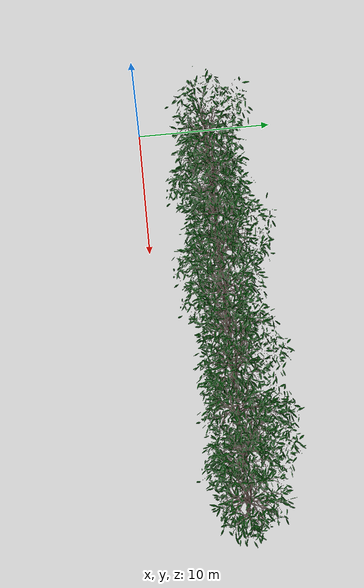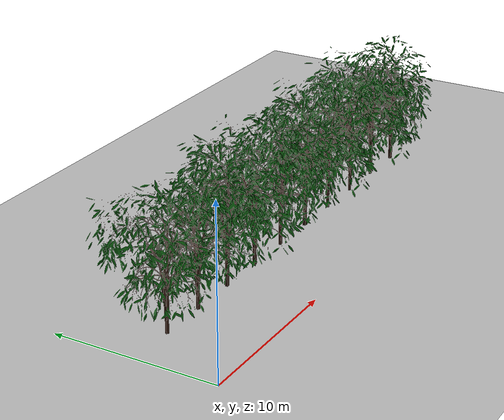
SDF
<sdf version="1.6">
 <world name="default">
  <model name="ground_plane">
   <static>1</static>
   <link name="link">
    <collision name="collision">
     <geometry><plane><normal>0 0 1</normal><size>100 100</size></plane></geometry>
     <surface><friction><ode><mu>100</mu><mu2>50</mu2></ode></friction></surface>
    </collision>
    <visual name="visual">
     <cast_shadows>0</cast_shadows>
     <geometry><plane><normal>0 0 1</normal><size>100 100</size></plane></geometry>
     <material>
      <script><uri>file://media/materials/scripts/gazebo.material</uri><name>Gazebo/Grey</name></script>
     </material>
    </visual>
   </link>
  </model>
  <light name="sun" type="directional">
   <pose>0 0 10 0 -0 0</pose>
   <diffuse>0.8 0.8 0.8 1</diffuse>
   <specular>0.1 0.1 0.1 1</specular>
   <attenuation>
    <range>1000</range>
    <constant>0.9</constant>
    <linear>0.01</linear>
    <quadratic>0.001</quadratic>
   </attenuation>
   <direction>-0.5 0.5 -1</direction>
  </light>
  <plugin name="sherpa_ros" filename="libsherpa_ros.so"/>
  <gravity>0 0 -9.8</gravity>
  <magnetic_field>6e-06 2.3e-05 -4.2e-05</magnetic_field>
  <atmosphere type="adiabatic"/>
  <physics name="default_physics" default="0" type="ode">
   <max_step_size>0.001</max_step_size>
   <real_time_factor>1</real_time_factor>
   <real_time_update_rate>1000</real_time_update_rate>
  </physics>
  <scene><ambient>0.4 0.4 0.4 1</ambient><background>0.7 0.7 0.7 1</background><shadows>1</shadows></scene>
  <spherical_coordinates>
   <surface_model>EARTH_WGS84</surface_model>
   <latitude_deg>0</latitude_deg>
   <longitude_deg>0</longitude_deg>
   <elevation>0</elevation>
   <heading_deg>0</heading_deg>
  </spherical_coordinates>
  <model name="unit_cylinder_0">
   <static>1</static>
   <link name="link">
    <inertial>
     <mass>100</mass>
     <inertia><ixx>16.67</ixx><ixy>0</ixy><ixz>0</ixz><iyy>6.67</iyy><iyz>0</iyz><izz>16.67</izz></inertia>
    </inertial>
    <collision name="collision">
     <geometry><mesh><uri>model://tree/meshes/tree.dae</uri><scale>1 1 1</scale></mesh></geometry>
    </collision>
    <visual name="visual">
     <geometry><mesh><uri>model://tree/meshes/tree.dae</uri><scale>1 1 1</scale></mesh></geometry>
    </visual>
   </link>
   <pose>3 5 0 0 0 -2.72444</pose>
  </model>
  <model name="unit_cylinder_1">
   <static>1</static>
   <link name="link">
    <inertial>
     <mass>100</mass>
     <inertia><ixx>16.67</ixx><ixy>0</ixy><ixz>0</ixz><iyy>6.67</iyy><iyz>0</iyz><izz>16.67</izz></inertia>
    </inertial>
    <collision name="collision">
     <geometry><mesh><uri>model://tree/meshes/tree.dae</uri><scale>1 1 1</scale></mesh></geometry>
    </collision>
    <visual name="visual">
     <geometry><mesh><uri>model://tree/meshes/tree.dae</uri><scale>1 1 1</scale></mesh></geometry>
    </visual>
   </link>
   <pose>6 5 0 0 -0 0.453818</pose>
  </model>
  <model name="unit_cylinder_2">
   <static>1</static>
   <link name="link">
    <inertial>
     <mass>100</mass>
     <inertia><ixx>16.67</ixx><ixy>0</ixy><ixz>0</ixz><iyy>6.67</iyy><iyz>0</iyz><izz>16.67</izz></inertia>
    </inertial>
    <collision name="collision">
     <geometry><mesh><uri>model://tree/meshes/tree.dae</uri><scale>1 1 1</scale></mesh></geometry>
    </collision>
    <visual name="visual">
     <geometry><mesh><uri>model://tree/meshes/tree.dae</uri><scale>1 1 1</scale></mesh></geometry>
    </visual>
   </link>
   <pose>9 5 0 0 0 -2.12464</pose>
  </model>
  <model name="unit_cylinder_3">
   <static>1</static>
   <link name="link">
    <inertial>
     <mass>100</mass>
     <inertia><ixx>16.67</ixx><ixy>0</ixy><ixz>0</ixz><iyy>6.67</iyy><iyz>0</iyz><izz>16.67</izz></inertia>
    </inertial>
    <collision name="collision">
     <geometry><mesh><uri>model://tree/meshes/tree.dae</uri><scale>1 1 1</scale></mesh></geometry>
    </collision>
    <visual name="visual">
     <geometry><mesh><uri>model://tree/meshes/tree.dae</uri><scale>1 1 1</scale></mesh></geometry>
    </visual>
   </link>
   <pose>12 5 0 0 -0 2.37993</pose>
  </model>
  <model name="unit_cylinder_4">
   <static>1</static>
   <link name="link">
    <inertial>
     <mass>100</mass>
     <inertia><ixx>16.67</ixx><ixy>0</ixy><ixz>0</ixz><iyy>6.67</iyy><iyz>0</iyz><izz>16.67</izz></inertia>
    </inertial>
    <collision name="collision">
     <geometry><mesh><uri>model://tree/meshes/tree.dae</uri><scale>1 1 1</scale></mesh></geometry>
    </collision>
    <visual name="visual">
     <geometry><mesh><uri>model://tree/meshes/tree.dae</uri><scale>1 1 1</scale></mesh></geometry>
    </visual>
   </link>
   <pose>15 5 0 0 0 -2.06835</pose>
  </model>
  <model name="unit_cylinder_5">
   <static>1</static>
   <link name="link">
    <inertial>
     <mass>100</mass>
     <inertia><ixx>16.67</ixx><ixy>0</ixy><ixz>0</ixz><iyy>6.67</iyy><iyz>0</iyz><izz>16.67</izz></inertia>
    </inertial>
    <collision name="collision">
     <geometry><mesh><uri>model://tree/meshes/tree.dae</uri><scale>1 1 1</scale></mesh></geometry>
    </collision>
    <visual name="visual">
     <geometry><mesh><uri>model://tree/meshes/tree.dae</uri><scale>1 1 1</scale></mesh></geometry>
    </visual>
   </link>
   <pose>18 5 0 0 0 -2.27791</pose>
  </model>
  <model name="unit_cylinder_6">
   <static>1</static>
   <link name="link">
    <inertial>
     <mass>100</mass>
     <inertia><ixx>16.67</ixx><ixy>0</ixy><ixz>0</ixz><iyy>6.67</iyy><iyz>0</iyz><izz>16.67</izz></inertia>
    </inertial>
    <collision name="collision">
     <geometry><mesh><uri>model://tree/meshes/tree.dae</uri><scale>1 1 1</scale></mesh></geometry>
    </collision>
    <visual name="visual">
     <geometry><mesh><uri>model://tree/meshes/tree.dae</uri><scale>1 1 1</scale></mesh></geometry>
    </visual>
   </link>
   <pose>21 5 0 0 -0 2.85817</pose>
  </model>
  <model name="unit_cylinder_7">
   <static>1</static>
   <link name="link">
    <inertial>
     <mass>100</mass>
     <inertia><ixx>16.67</ixx><ixy>0</ixy><ixz>0</ixz><iyy>6.67</iyy><iyz>0</iyz><izz>16.67</izz></inertia>
    </inertial>
    <collision name="collision">
     <geometry><mesh><uri>model://tree/meshes/tree.dae</uri><scale>1 1 1</scale></mesh></geometry>
    </collision>
    <visual name="visual">
     <geometry><mesh><uri>model://tree/meshes/tree.dae</uri><scale>1 1 1</scale></mesh></geometry>
    </visual>
   </link>
   <pose>24 5 0 0 -0 1.49266</pose>
  </model>
  <model name="unit_cylinder_8">
   <static>1</static>
   <link name="link">
    <inertial>
     <mass>100</mass>
     <inertia><ixx>16.67</ixx><ixy>0</ixy><ixz>0</ixz><iyy>6.67</iyy><iyz>0</iyz><izz>16.67</izz></inertia>
    </inertial>
    <collision name="collision">
     <geometry><mesh><uri>model://tree/meshes/tree.dae</uri><scale>1 1 1</scale></mesh></geometry>
    </collision>
    <visual name="visual">
     <geometry><mesh><uri>model://tree/meshes/tree.dae</uri><scale>1 1 1</scale></mesh></geometry>
    </visual>
   </link>
   <pose>27 5 0 0 -0 2.71663</pose>
  </model>
  <model name="unit_cylinder_9">
   <static>1</static>
   <link name="link">
    <inertial>
     <mass>100</mass>
     <inertia><ixx>16.67</ixx><ixy>0</ixy><ixz>0</ixz><iyy>6.67</iyy><iyz>0</iyz><izz>16.67</izz></inertia>
    </inertial>
    <collision name="collision">
     <geometry><mesh><uri>model://tree/meshes/tree.dae</uri><scale>1 1 1</scale></mesh></geometry>
    </collision>
    <visual name="visual">
     <geometry><mesh><uri>model://tree/meshes/tree.dae</uri><scale>1 1 1</scale></mesh></geometry>
    </visual>
   </link>
   <pose>30 5 0 0 0 -2.4616</pose>
  </model>
 </world>
</sdf>
